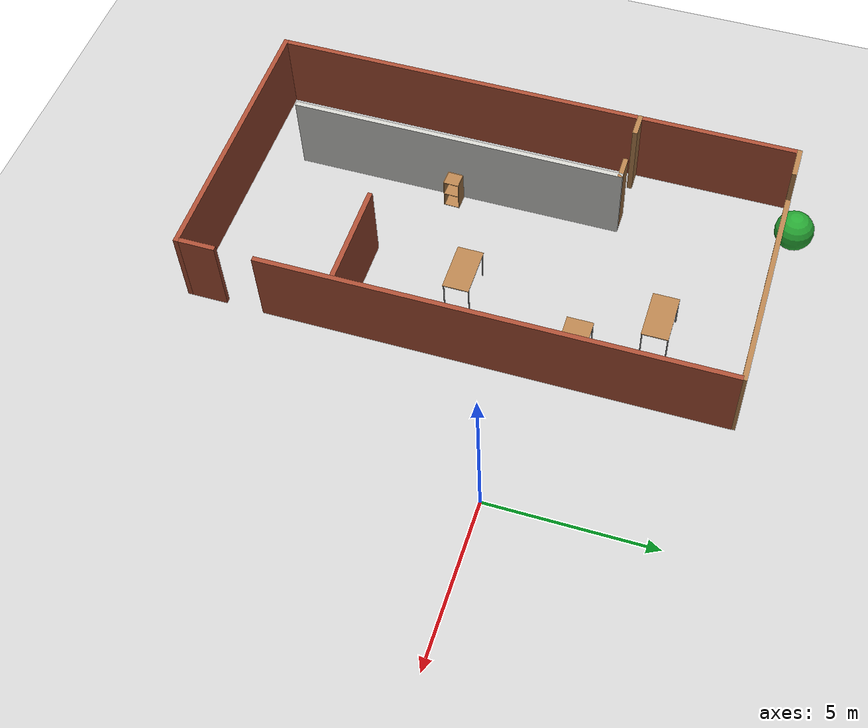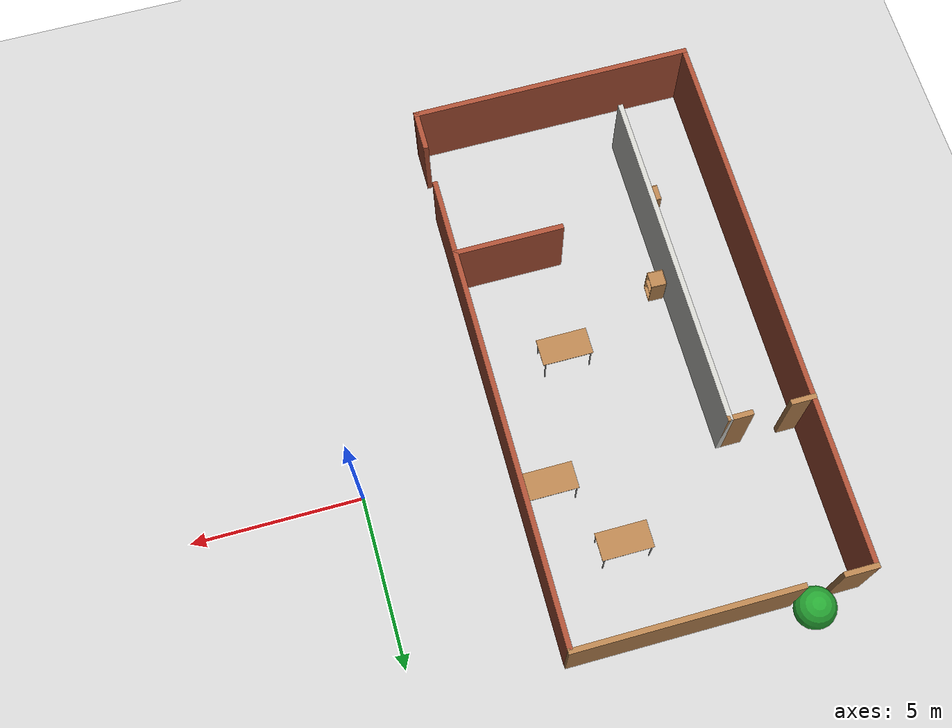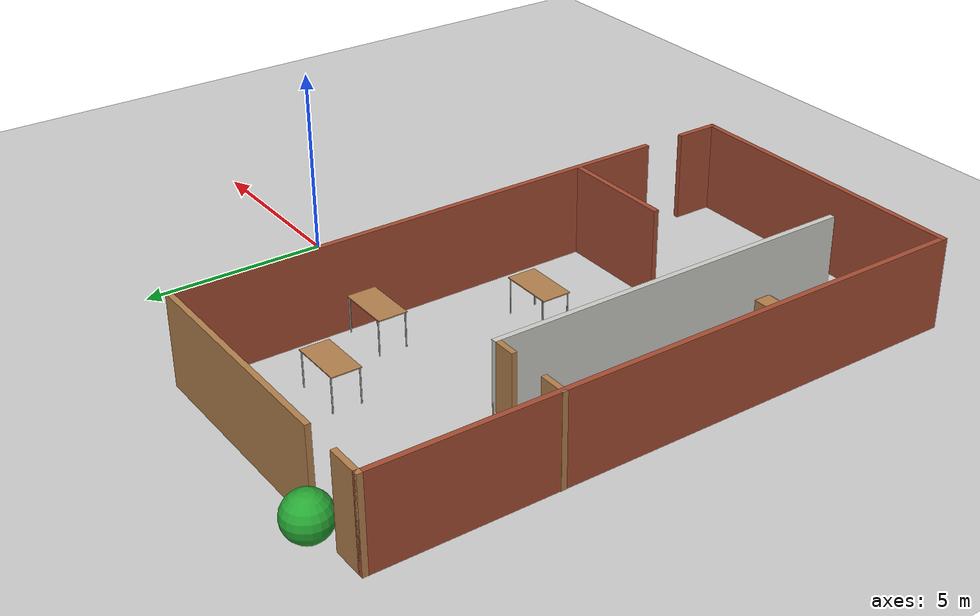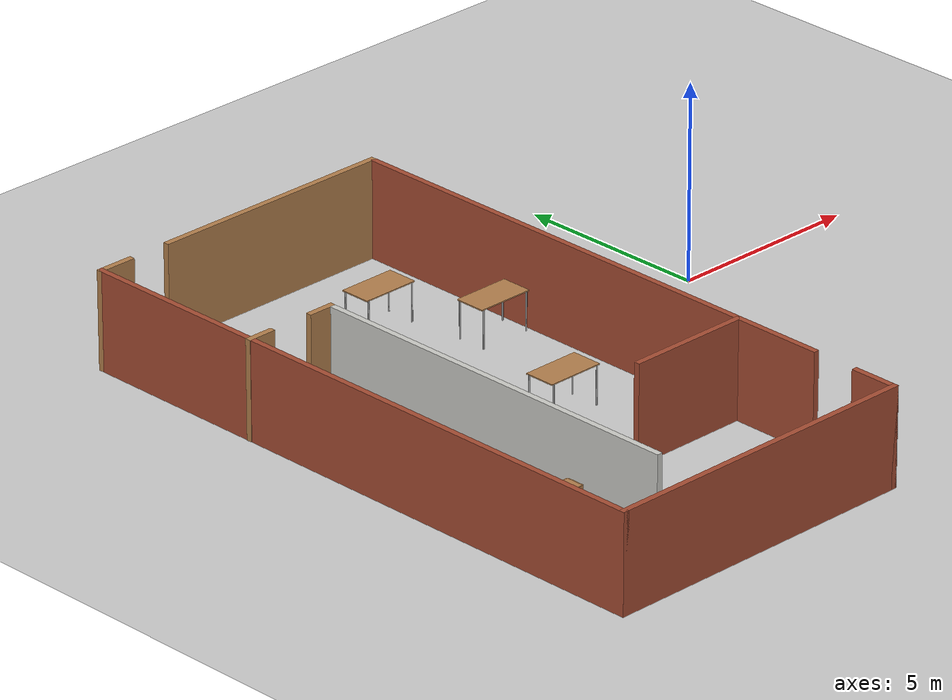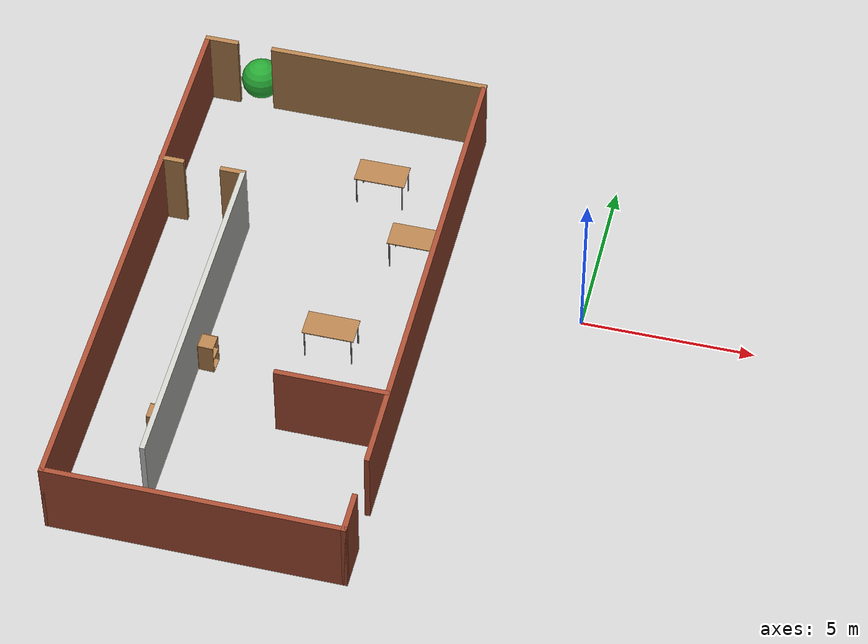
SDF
<sdf version="1.6">
 <world name="default">
  <model name="ground_plane">
   <static>1</static>
   <link name="link">
    <collision name="collision">
     <geometry><plane><normal>0 0 1</normal><size>100 100</size></plane></geometry>
     <surface><friction><ode><mu>100</mu><mu2>50</mu2></ode></friction></surface>
    </collision>
    <visual name="visual">
     <cast_shadows>0</cast_shadows>
     <geometry><plane><normal>0 0 1</normal><size>100 100</size></plane></geometry>
     <material>
      <script><uri>file://media/materials/scripts/gazebo.material</uri><name>Gazebo/Tertiary</name></script>
     </material>
    </visual>
   </link>
  </model>
  <light name="sun" type="directional">
   <pose>0 0 10 0 -0 0</pose>
   <diffuse>0.8 0.8 0.8 1</diffuse>
   <specular>0.2 0.2 0.2 1</specular>
   <attenuation>
    <range>1000</range>
    <constant>0.9</constant>
    <linear>0.01</linear>
    <quadratic>0.001</quadratic>
   </attenuation>
   <direction>-0.5 0.1 -0.9</direction>
  </light>
  <model name="goal_position">
   <link name="link_0">
    <inertial>
     <mass>0.0001</mass>
     <inertia><ixx>1e-05</ixx><ixy>0</ixy><ixz>0</ixz><iyy>1e-05</iyy><iyz>0</iyz><izz>0</izz></inertia>
    </inertial>
    <pose>2.4e-05 -1.2e-05 0 0 -0 0</pose>
    <gravity>0</gravity>
    <visual name="visual">
     <geometry><sphere><radius>0.6</radius></sphere></geometry>
     <material>
      <lighting>1</lighting>
      <script><uri>file://media/materials/scripts/gazebo.material</uri><name>Gazebo/Green</name></script>
      <shader type="vertex"><normal_map>__default__</normal_map></shader>
      <ambient>1 0 0 1</ambient>
      <diffuse>0.2 1 0.2 1</diffuse>
      <specular>0.1 0.1 0.1 1</specular>
      <emissive>0 0 0 1</emissive>
     </material>
    </visual>
   </link>
   <static>1</static>
   <pose>-11.1617 6.42949 0.7 0 -0 0</pose>
  </model>
  <gravity>0 0 -9.8</gravity>
  <magnetic_field>6e-06 2.3e-05 -4.2e-05</magnetic_field>
  <atmosphere type="adiabatic"/>
  <physics name="default_physics" default="0" type="ode">
   <max_step_size>0.001</max_step_size>
   <real_time_factor>1</real_time_factor>
   <real_time_update_rate>1000</real_time_update_rate>
  </physics>
  <scene><ambient>0.4 0.4 0.4 1</ambient><background>0.7 0.7 0.7 1</background><shadows>1</shadows></scene>
  <spherical_coordinates>
   <surface_model>EARTH_WGS84</surface_model>
   <latitude_deg>0</latitude_deg>
   <longitude_deg>0</longitude_deg>
   <elevation>0</elevation>
   <heading_deg>0</heading_deg>
  </spherical_coordinates>
  <model name="meet_room">
   <pose>-8.45396 -2.13556 0 0 -0 0</pose>
   <link name="Wall_0">
    <collision name="Wall_0_Collision">
     <geometry><box><size>16.5 0.15 2.5</size></box></geometry>
     <pose>0 0 1.25 0 -0 0</pose>
    </collision>
    <visual name="Wall_0_Visual">
     <pose>0 0 1.25 0 -0 0</pose>
     <geometry><box><size>16.5 0.15 2.5</size></box></geometry>
     <material>
      <script><uri>file://media/materials/scripts/gazebo.material</uri><name>Gazebo/Bricks</name></script>
      <ambient>1 1 1 1</ambient>
     </material>
     <meta><layer>0</layer></meta>
    </visual>
    <pose>-4.18284 -0 0 0 -0 -1.5708</pose>
   </link>
   <link name="Wall_1">
    <collision name="Wall_1_Collision">
     <geometry><box><size>8.5 0.15 2.5</size></box></geometry>
     <pose>0 0 1.25 0 -0 0</pose>
    </collision>
    <visual name="Wall_1_Visual">
     <pose>0 0 1.25 0 -0 0</pose>
     <geometry><box><size>8.5 0.15 2.5</size></box></geometry>
     <material>
      <script><uri>file://media/materials/scripts/gazebo.material</uri><name>Gazebo/Bricks</name></script>
      <ambient>1 1 1 1</ambient>
     </material>
     <meta><layer>0</layer></meta>
    </visual>
    <pose>-0.007837 -8.175 0 0 -0 0</pose>
   </link>
   <link name="Wall_19">
    <collision name="Wall_19_Collision">
     <geometry><box><size>10.25 0.15 2.5</size></box></geometry>
     <pose>0 0 1.25 0 -0 0</pose>
    </collision>
    <visual name="Wall_19_Visual">
     <pose>0 0 1.25 0 -0 0</pose>
     <geometry><box><size>10.25 0.15 2.5</size></box></geometry>
     <material>
      <script><uri>file://media/materials/scripts/gazebo.material</uri><name>Gazebo/CeilingTiled</name></script>
      <ambient>1 1 1 1</ambient>
     </material>
     <meta><layer>0</layer></meta>
    </visual>
    <pose>-1.76891 -1.75518 0 0 -0 -1.5708</pose>
   </link>
   <link name="Wall_2">
    <collision name="Wall_2_Collision">
     <geometry><box><size>1.25 0.15 2.5</size></box></geometry>
     <pose>0 0 1.25 0 -0 0</pose>
    </collision>
    <visual name="Wall_2_Visual">
     <pose>0 0 1.25 0 -0 0</pose>
     <geometry><box><size>1.25 0.15 2.5</size></box></geometry>
     <material>
      <script><uri>file://media/materials/scripts/gazebo.material</uri><name>Gazebo/Bricks</name></script>
      <ambient>1 1 1 1</ambient>
     </material>
     <meta><layer>0</layer></meta>
    </visual>
    <pose>4.16716 -7.625 0 0 -0 1.5708</pose>
   </link>
   <link name="Wall_21">
    <collision name="Wall_21_Collision">
     <geometry><box><size>0.75 0.15 2.5</size></box></geometry>
     <pose>0 0 1.25 0 -0 0</pose>
    </collision>
    <visual name="Wall_21_Visual">
     <pose>0 0 1.25 0 -0 0</pose>
     <geometry><box><size>0.75 0.15 2.5</size></box></geometry>
     <material>
      <script><uri>file://media/materials/scripts/gazebo.material</uri><name>Gazebo/Wood</name></script>
      <ambient>1 1 1 1</ambient>
     </material>
     <meta><layer>0</layer></meta>
    </visual>
    <pose>-2.06891 3.29482 0 0 -0 3.14159</pose>
   </link>
   <link name="Wall_23">
    <collision name="Wall_23_Collision">
     <geometry><box><size>0.75 0.15 2.5</size></box></geometry>
     <pose>0 0 1.25 0 -0 0</pose>
    </collision>
    <visual name="Wall_23_Visual">
     <pose>0 0 1.25 0 -0 0</pose>
     <geometry><box><size>0.75 0.15 2.5</size></box></geometry>
     <material>
      <script><uri>file://media/materials/scripts/gazebo.material</uri><name>Gazebo/Wood</name></script>
      <ambient>1 1 1 1</ambient>
     </material>
     <meta><layer>0</layer></meta>
    </visual>
    <pose>-3.89147 3.30694 0 0 -0 0</pose>
   </link>
   <link name="Wall_25">
    <collision name="Wall_25_Collision">
     <geometry><box><size>3.25 0.15 2.5</size></box></geometry>
     <pose>0 0 1.25 0 -0 0</pose>
    </collision>
    <visual name="Wall_25_Visual">
     <pose>0 0 1.25 0 -0 0</pose>
     <geometry><box><size>3.25 0.15 2.5</size></box></geometry>
     <material>
      <script><uri>file://media/materials/scripts/gazebo.material</uri><name>Gazebo/Bricks</name></script>
      <ambient>1 1 1 1</ambient>
     </material>
     <meta><layer>0</layer></meta>
    </visual>
    <pose>2.60446 -3.4935 0 0 -0 3.14159</pose>
   </link>
   <link name="Wall_4">
    <collision name="Wall_4_Collision">
     <geometry><box><size>1 0.15 2.5</size></box></geometry>
     <pose>0 0 1.25 0 -0 0</pose>
    </collision>
    <visual name="Wall_4_Visual">
     <pose>0 0 1.25 0 -0 0</pose>
     <geometry><box><size>1 0.15 2.5</size></box></geometry>
     <material>
      <script><uri>file://media/materials/scripts/gazebo.material</uri><name>Gazebo/Wood</name></script>
      <ambient>1 1 1 1</ambient>
     </material>
     <meta><layer>0</layer></meta>
    </visual>
    <pose>-3.75784 8.175 0 0 -0 0</pose>
   </link>
   <link name="Wall_6">
    <collision name="Wall_6_Collision">
     <geometry><box><size>14 0.15 2.5</size></box></geometry>
     <pose>0 0 1.25 0 -0 0</pose>
    </collision>
    <visual name="Wall_6_Visual">
     <pose>0 0 1.25 0 -0 0</pose>
     <geometry><box><size>14 0.15 2.5</size></box></geometry>
     <material>
      <script><uri>file://media/materials/scripts/gazebo.material</uri><name>Gazebo/Bricks</name></script>
      <ambient>1 1 1 1</ambient>
     </material>
     <meta><layer>0</layer></meta>
    </visual>
    <pose>4.19147 1.14283 0 0 -0 1.5708</pose>
   </link>
   <link name="Wall_8">
    <collision name="Wall_8_Collision">
     <geometry><box><size>6.5 0.15 2.5</size></box></geometry>
     <pose>0 0 1.25 0 -0 0</pose>
    </collision>
    <visual name="Wall_8_Visual">
     <pose>0 0 1.25 0 -0 0</pose>
     <geometry><box><size>6.5 0.15 2.5</size></box></geometry>
     <material>
      <script><uri>file://media/materials/scripts/gazebo.material</uri><name>Gazebo/Wood</name></script>
      <ambient>1 1 1 1</ambient>
     </material>
     <meta><layer>0</layer></meta>
    </visual>
    <pose>1.00836 8.175 0 0 -0 0</pose>
   </link>
   <static>1</static>
  </model>
  <model name="table">
   <static>1</static>
   <link name="link">
    <collision name="surface">
     <pose>0 0 1 0 -0 0</pose>
     <geometry><box><size>1.5 0.8 0.03</size></box></geometry>
     <surface><friction><ode><mu>0.6</mu><mu2>0.6</mu2></ode></friction></surface>
    </collision>
    <visual name="visual1">
     <pose>0 0 1 0 -0 0</pose>
     <geometry><box><size>1.5 0.8 0.03</size></box></geometry>
     <material>
      <script><uri>file://media/materials/scripts/gazebo.material</uri><name>Gazebo/Wood</name></script>
     </material>
    </visual>
    <collision name="front_left_leg">
     <pose>0.68 0.38 0.5 0 -0 0</pose>
     <geometry><cylinder><radius>0.02</radius><length>1</length></cylinder></geometry>
    </collision>
    <visual name="front_left_leg">
     <pose>0.68 0.38 0.5 0 -0 0</pose>
     <geometry><cylinder><radius>0.02</radius><length>1</length></cylinder></geometry>
     <material>
      <script><uri>file://media/materials/scripts/gazebo.material</uri><name>Gazebo/Grey</name></script>
     </material>
    </visual>
    <collision name="front_right_leg">
     <pose>0.68 -0.38 0.5 0 -0 0</pose>
     <geometry><cylinder><radius>0.02</radius><length>1</length></cylinder></geometry>
    </collision>
    <visual name="front_right_leg">
     <pose>0.68 -0.38 0.5 0 -0 0</pose>
     <geometry><cylinder><radius>0.02</radius><length>1</length></cylinder></geometry>
     <material>
      <script><uri>file://media/materials/scripts/gazebo.material</uri><name>Gazebo/Grey</name></script>
     </material>
    </visual>
    <collision name="back_right_leg">
     <pose>-0.68 -0.38 0.5 0 -0 0</pose>
     <geometry><cylinder><radius>0.02</radius><length>1</length></cylinder></geometry>
    </collision>
    <visual name="back_right_leg">
     <pose>-0.68 -0.38 0.5 0 -0 0</pose>
     <geometry><cylinder><radius>0.02</radius><length>1</length></cylinder></geometry>
     <material>
      <script><uri>file://media/materials/scripts/gazebo.material</uri><name>Gazebo/Grey</name></script>
     </material>
    </visual>
    <collision name="back_left_leg">
     <pose>-0.68 0.38 0.5 0 -0 0</pose>
     <geometry><cylinder><radius>0.02</radius><length>1</length></cylinder></geometry>
    </collision>
    <visual name="back_left_leg">
     <pose>-0.68 0.38 0.5 0 -0 0</pose>
     <geometry><cylinder><radius>0.02</radius><length>1</length></cylinder></geometry>
     <material>
      <script><uri>file://media/materials/scripts/gazebo.material</uri><name>Gazebo/Grey</name></script>
     </material>
    </visual>
   </link>
   <pose>-6.67962 -2.58446 0 0 -0 0</pose>
  </model>
  <model name="table_0">
   <static>1</static>
   <link name="link">
    <collision name="surface">
     <pose>0 0 1 0 -0 0</pose>
     <geometry><box><size>1.5 0.8 0.03</size></box></geometry>
     <surface><friction><ode><mu>0.6</mu><mu2>0.6</mu2></ode></friction></surface>
    </collision>
    <visual name="visual1">
     <pose>0 0 1 0 -0 0</pose>
     <geometry><box><size>1.5 0.8 0.03</size></box></geometry>
     <material>
      <script><uri>file://media/materials/scripts/gazebo.material</uri><name>Gazebo/Wood</name></script>
     </material>
    </visual>
    <collision name="front_left_leg">
     <pose>0.68 0.38 0.5 0 -0 0</pose>
     <geometry><cylinder><radius>0.02</radius><length>1</length></cylinder></geometry>
    </collision>
    <visual name="front_left_leg">
     <pose>0.68 0.38 0.5 0 -0 0</pose>
     <geometry><cylinder><radius>0.02</radius><length>1</length></cylinder></geometry>
     <material>
      <script><uri>file://media/materials/scripts/gazebo.material</uri><name>Gazebo/Grey</name></script>
     </material>
    </visual>
    <collision name="front_right_leg">
     <pose>0.68 -0.38 0.5 0 -0 0</pose>
     <geometry><cylinder><radius>0.02</radius><length>1</length></cylinder></geometry>
    </collision>
    <visual name="front_right_leg">
     <pose>0.68 -0.38 0.5 0 -0 0</pose>
     <geometry><cylinder><radius>0.02</radius><length>1</length></cylinder></geometry>
     <material>
      <script><uri>file://media/materials/scripts/gazebo.material</uri><name>Gazebo/Grey</name></script>
     </material>
    </visual>
    <collision name="back_right_leg">
     <pose>-0.68 -0.38 0.5 0 -0 0</pose>
     <geometry><cylinder><radius>0.02</radius><length>1</length></cylinder></geometry>
    </collision>
    <visual name="back_right_leg">
     <pose>-0.68 -0.38 0.5 0 -0 0</pose>
     <geometry><cylinder><radius>0.02</radius><length>1</length></cylinder></geometry>
     <material>
      <script><uri>file://media/materials/scripts/gazebo.material</uri><name>Gazebo/Grey</name></script>
     </material>
    </visual>
    <collision name="back_left_leg">
     <pose>-0.68 0.38 0.5 0 -0 0</pose>
     <geometry><cylinder><radius>0.02</radius><length>1</length></cylinder></geometry>
    </collision>
    <visual name="back_left_leg">
     <pose>-0.68 0.38 0.5 0 -0 0</pose>
     <geometry><cylinder><radius>0.02</radius><length>1</length></cylinder></geometry>
     <material>
      <script><uri>file://media/materials/scripts/gazebo.material</uri><name>Gazebo/Grey</name></script>
     </material>
    </visual>
   </link>
   <pose>-6.66928 3.33095 0 0 -0 0</pose>
  </model>
  <model name="cabinet">
   <static>1</static>
   <link name="cabinet_bottom_plate">
    <inertial>
     <pose>0 0 -1 0 -0 0</pose>
     <inertia><ixx>2.05</ixx><ixy>0</ixy><ixz>0</ixz><iyy>2.05</iyy><iyz>0</iyz><izz>2.05</izz></inertia>
     <mass>25</mass>
    </inertial>
    <collision name="cabinet_bottom_plate_geom">
     <pose>0 0 0.01 0 -0 0</pose>
     <geometry><box><size>0.45 0.45 0.02</size></box></geometry>
    </collision>
    <visual name="cabinet_bottom_plate_geom_visual">
     <pose>0 0 0.01 0 -0 0</pose>
     <geometry><box><size>0.45 0.45 0.02</size></box></geometry>
     <material>
      <script><uri>file://media/materials/scripts/gazebo.material</uri><name>Gazebo/Wood</name></script>
     </material>
    </visual>
    <collision name="cabinet_bottom_plate_geom_cabinet_back_plate">
     <pose>0.235 0 0.51 0 -0 0</pose>
     <geometry><box><size>0.02 0.45 1.02</size></box></geometry>
    </collision>
    <visual name="cabinet_bottom_plate_geom_cabinet_back_plate_visual">
     <pose>0.235 0 0.51 0 -0 0</pose>
     <geometry><box><size>0.02 0.45 1.02</size></box></geometry>
     <material>
      <script><uri>file://media/materials/scripts/gazebo.material</uri><name>Gazebo/Wood</name></script>
     </material>
    </visual>
    <collision name="cabinet_bottom_plate_geom_cabinet_left_plate">
     <pose>0 0.235 0.51 0 -0 0</pose>
     <geometry><box><size>0.45 0.02 1.02</size></box></geometry>
    </collision>
    <visual name="cabinet_bottom_plate_geom_cabinet_left_plate_visual">
     <pose>0 0.235 0.51 0 -0 0</pose>
     <geometry><box><size>0.45 0.02 1.02</size></box></geometry>
     <material>
      <script><uri>file://media/materials/scripts/gazebo.material</uri><name>Gazebo/Wood</name></script>
     </material>
    </visual>
    <collision name="cabinet_bottom_plate_geom_cabinet_middle_plate">
     <pose>0 0 0.51 0 -0 0</pose>
     <geometry><box><size>0.45 0.45 0.02</size></box></geometry>
    </collision>
    <visual name="cabinet_bottom_plate_geom_cabinet_middle_plate_visual">
     <pose>0 0 0.51 0 -0 0</pose>
     <geometry><box><size>0.45 0.45 0.02</size></box></geometry>
     <material>
      <script><uri>file://media/materials/scripts/gazebo.material</uri><name>Gazebo/Wood</name></script>
     </material>
    </visual>
    <collision name="cabinet_bottom_plate_geom_cabinet_right_plate">
     <pose>0 -0.235 0.51 0 -0 0</pose>
     <geometry><box><size>0.45 0.02 1.02</size></box></geometry>
    </collision>
    <visual name="cabinet_bottom_plate_geom_cabinet_right_plate_visual">
     <pose>0 -0.235 0.51 0 -0 0</pose>
     <geometry><box><size>0.45 0.02 1.02</size></box></geometry>
     <material>
      <script><uri>file://media/materials/scripts/gazebo.material</uri><name>Gazebo/Wood</name></script>
     </material>
    </visual>
    <collision name="cabinet_bottom_plate_geom_cabinet_top_plate">
     <pose>0 0 1.01 0 -0 0</pose>
     <geometry><box><size>0.45 0.45 0.02</size></box></geometry>
    </collision>
    <visual name="cabinet_bottom_plate_geom_cabinet_top_plate_visual">
     <pose>0 0 1.01 0 -0 0</pose>
     <geometry><box><size>0.45 0.45 0.02</size></box></geometry>
     <material>
      <script><uri>file://media/materials/scripts/gazebo.material</uri><name>Gazebo/Wood</name></script>
     </material>
    </visual>
   </link>
   <pose>-9.89796 -3.92595 0 0 -0 3.10936</pose>
  </model>
  <model name="cabinet_0">
   <static>1</static>
   <link name="cabinet_bottom_plate">
    <inertial>
     <pose>0 0 -1 0 -0 0</pose>
     <inertia><ixx>2.05</ixx><ixy>0</ixy><ixz>0</ixz><iyy>2.05</iyy><iyz>0</iyz><izz>2.05</izz></inertia>
     <mass>25</mass>
    </inertial>
    <collision name="cabinet_bottom_plate_geom">
     <pose>0 0 0.01 0 -0 0</pose>
     <geometry><box><size>0.45 0.45 0.02</size></box></geometry>
    </collision>
    <visual name="cabinet_bottom_plate_geom_visual">
     <pose>0 0 0.01 0 -0 0</pose>
     <geometry><box><size>0.45 0.45 0.02</size></box></geometry>
     <material>
      <script><uri>file://media/materials/scripts/gazebo.material</uri><name>Gazebo/Wood</name></script>
     </material>
    </visual>
    <collision name="cabinet_bottom_plate_geom_cabinet_back_plate">
     <pose>0.235 0 0.51 0 -0 0</pose>
     <geometry><box><size>0.02 0.45 1.02</size></box></geometry>
    </collision>
    <visual name="cabinet_bottom_plate_geom_cabinet_back_plate_visual">
     <pose>0.235 0 0.51 0 -0 0</pose>
     <geometry><box><size>0.02 0.45 1.02</size></box></geometry>
     <material>
      <script><uri>file://media/materials/scripts/gazebo.material</uri><name>Gazebo/Wood</name></script>
     </material>
    </visual>
    <collision name="cabinet_bottom_plate_geom_cabinet_left_plate">
     <pose>0 0.235 0.51 0 -0 0</pose>
     <geometry><box><size>0.45 0.02 1.02</size></box></geometry>
    </collision>
    <visual name="cabinet_bottom_plate_geom_cabinet_left_plate_visual">
     <pose>0 0.235 0.51 0 -0 0</pose>
     <geometry><box><size>0.45 0.02 1.02</size></box></geometry>
     <material>
      <script><uri>file://media/materials/scripts/gazebo.material</uri><name>Gazebo/Wood</name></script>
     </material>
    </visual>
    <collision name="cabinet_bottom_plate_geom_cabinet_middle_plate">
     <pose>0 0 0.51 0 -0 0</pose>
     <geometry><box><size>0.45 0.45 0.02</size></box></geometry>
    </collision>
    <visual name="cabinet_bottom_plate_geom_cabinet_middle_plate_visual">
     <pose>0 0 0.51 0 -0 0</pose>
     <geometry><box><size>0.45 0.45 0.02</size></box></geometry>
     <material>
      <script><uri>file://media/materials/scripts/gazebo.material</uri><name>Gazebo/Wood</name></script>
     </material>
    </visual>
    <collision name="cabinet_bottom_plate_geom_cabinet_right_plate">
     <pose>0 -0.235 0.51 0 -0 0</pose>
     <geometry><box><size>0.45 0.02 1.02</size></box></geometry>
    </collision>
    <visual name="cabinet_bottom_plate_geom_cabinet_right_plate_visual">
     <pose>0 -0.235 0.51 0 -0 0</pose>
     <geometry><box><size>0.45 0.02 1.02</size></box></geometry>
     <material>
      <script><uri>file://media/materials/scripts/gazebo.material</uri><name>Gazebo/Wood</name></script>
     </material>
    </visual>
    <collision name="cabinet_bottom_plate_geom_cabinet_top_plate">
     <pose>0 0 1.01 0 -0 0</pose>
     <geometry><box><size>0.45 0.45 0.02</size></box></geometry>
    </collision>
    <visual name="cabinet_bottom_plate_geom_cabinet_top_plate_visual">
     <pose>0 0 1.01 0 -0 0</pose>
     <geometry><box><size>0.45 0.45 0.02</size></box></geometry>
     <material>
      <script><uri>file://media/materials/scripts/gazebo.material</uri><name>Gazebo/Wood</name></script>
     </material>
    </visual>
   </link>
   <pose>-10.6102 -6.63844 0 0 -0 0</pose>
  </model>
  <model name="table_1">
   <static>1</static>
   <link name="link">
    <collision name="surface">
     <pose>0 0 1 0 -0 0</pose>
     <geometry><box><size>1.5 0.8 0.03</size></box></geometry>
     <surface><friction><ode><mu>0.6</mu><mu2>0.6</mu2></ode></friction></surface>
    </collision>
    <visual name="visual1">
     <pose>0 0 1 0 -0 0</pose>
     <geometry><box><size>1.5 0.8 0.03</size></box></geometry>
     <material>
      <script><uri>file://media/materials/scripts/gazebo.material</uri><name>Gazebo/Wood</name></script>
     </material>
    </visual>
    <collision name="front_left_leg">
     <pose>0.68 0.38 0.5 0 -0 0</pose>
     <geometry><cylinder><radius>0.02</radius><length>1</length></cylinder></geometry>
    </collision>
    <visual name="front_left_leg">
     <pose>0.68 0.38 0.5 0 -0 0</pose>
     <geometry><cylinder><radius>0.02</radius><length>1</length></cylinder></geometry>
     <material>
      <script><uri>file://media/materials/scripts/gazebo.material</uri><name>Gazebo/Grey</name></script>
     </material>
    </visual>
    <collision name="front_right_leg">
     <pose>0.68 -0.38 0.5 0 -0 0</pose>
     <geometry><cylinder><radius>0.02</radius><length>1</length></cylinder></geometry>
    </collision>
    <visual name="front_right_leg">
     <pose>0.68 -0.38 0.5 0 -0 0</pose>
     <geometry><cylinder><radius>0.02</radius><length>1</length></cylinder></geometry>
     <material>
      <script><uri>file://media/materials/scripts/gazebo.material</uri><name>Gazebo/Grey</name></script>
     </material>
    </visual>
    <collision name="back_right_leg">
     <pose>-0.68 -0.38 0.5 0 -0 0</pose>
     <geometry><cylinder><radius>0.02</radius><length>1</length></cylinder></geometry>
    </collision>
    <visual name="back_right_leg">
     <pose>-0.68 -0.38 0.5 0 -0 0</pose>
     <geometry><cylinder><radius>0.02</radius><length>1</length></cylinder></geometry>
     <material>
      <script><uri>file://media/materials/scripts/gazebo.material</uri><name>Gazebo/Grey</name></script>
     </material>
    </visual>
    <collision name="back_left_leg">
     <pose>-0.68 0.38 0.5 0 -0 0</pose>
     <geometry><cylinder><radius>0.02</radius><length>1</length></cylinder></geometry>
    </collision>
    <visual name="back_left_leg">
     <pose>-0.68 0.38 0.5 0 -0 0</pose>
     <geometry><cylinder><radius>0.02</radius><length>1</length></cylinder></geometry>
     <material>
      <script><uri>file://media/materials/scripts/gazebo.material</uri><name>Gazebo/Grey</name></script>
     </material>
    </visual>
   </link>
   <pose>-5.15174 1.17124 0 0 -0 0</pose>
  </model>
 </world>
</sdf>
